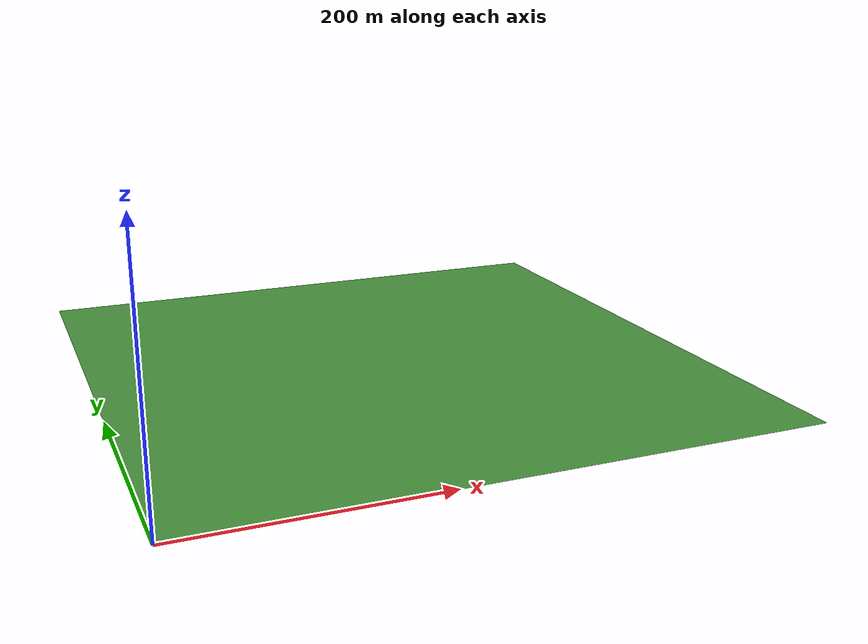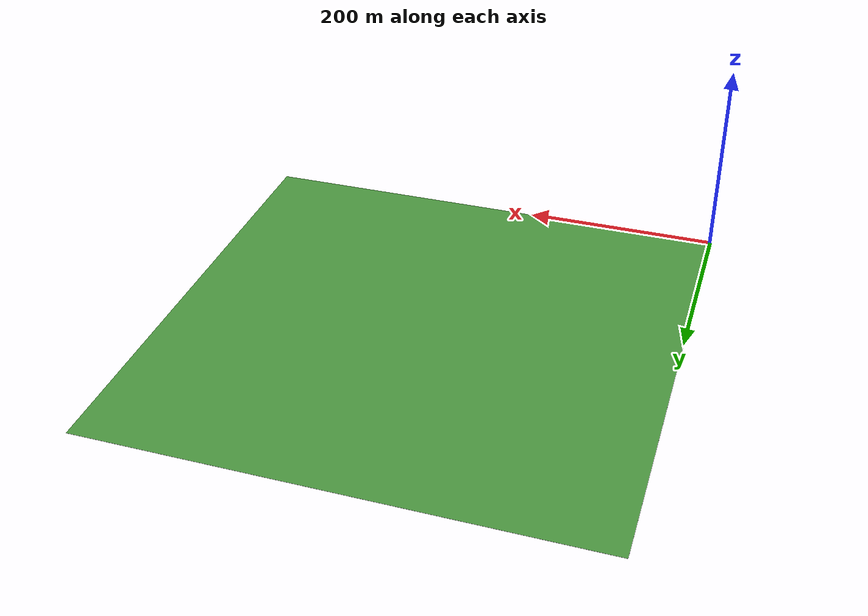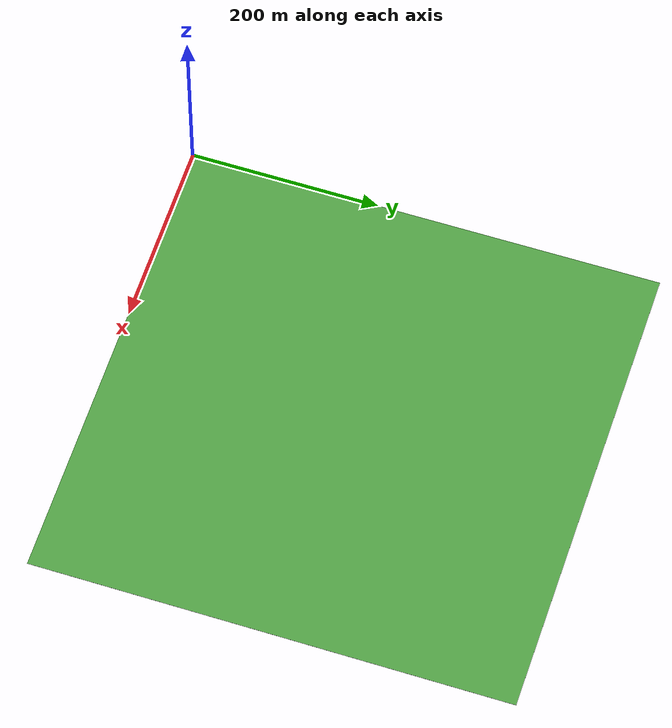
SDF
<?xml version="1.0" ?>
<sdf version="1.5">
  <world name="default">
    <!-- A global light source -->
    <include>
      <uri>model://sun</uri>
    </include>
    <include>
      <uri>model://grass_plane</uri>
      <pose>250 250 -0.1 0 0 0</pose>
    </include>
    <plugin name='dryden_world' filename='libgazebo_dryden_plugin.so'>
      <frameId>base_link</frameId>
      <robotNamespace/>
      <windVelocityMean>0.0</windVelocityMean>
      <windVelocityMax>0.0</windVelocityMax>
      <windVelocityVariance>0</windVelocityVariance>
      <windDirectionMean>0 1 0</windDirectionMean>
      <windDirectionVariance>0</windDirectionVariance>
      <windGustStart>0</windGustStart>
      <windGustDuration>0</windGustDuration>
      <windGustVelocityMean>0</windGustVelocityMean>
      <windGustVelocityMax>0.0</windGustVelocityMax>
      <windGustVelocityVariance>0.1</windGustVelocityVariance>
      <windGustDirectionMean>1 0 0</windGustDirectionMean>
      <windGustDirectionVariance>0.5</windGustDirectionVariance>
      <windPubTopic>world_wind</windPubTopic>
    </plugin>
    <physics name='default_physics' default='0' type='ode'>
      <gravity>0 0 -9.8066</gravity>
      <ode>
        <solver>
          <type>quick</type>
          <iters>10</iters>
          <sor>1.3</sor>
          <use_dynamic_moi_rescaling>0</use_dynamic_moi_rescaling>
        </solver>
        <constraints>
          <cfm>0</cfm>
          <erp>0.2</erp>
          <contact_max_correcting_vel>100</contact_max_correcting_vel>
          <contact_surface_layer>0.001</contact_surface_layer>
        </constraints>
      </ode>
      <max_step_size>0.004</max_step_size>
      <real_time_factor>1</real_time_factor>
      <real_time_update_rate>250</real_time_update_rate>
      <magnetic_field>6.0e-6 2.3e-5 -4.2e-5</magnetic_field>
    </physics>
  </world>
</sdf>

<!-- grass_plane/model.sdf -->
<sdf version="1.5">
  <model name="grass_plane">
    <static>true</static>
    <link name="link">
      <collision name="collision">
        <geometry>
          <box>
            <size>500 500 .1</size>
          </box>
        </geometry>
      </collision>
      <visual name="visual">
        <cast_shadows>false</cast_shadows>
        <geometry>
          <box>
            <size>500 500 .1</size>
          </box>
        </geometry>
        <material>
          <script>
            <uri>model://grass_plane/materials/scripts</uri>
            <uri>model://grass_plane/materials/textures</uri>
            <name>vrc/grass</name>
          </script>
        </material>
      </visual>
    </link>
  </model>
</sdf>
